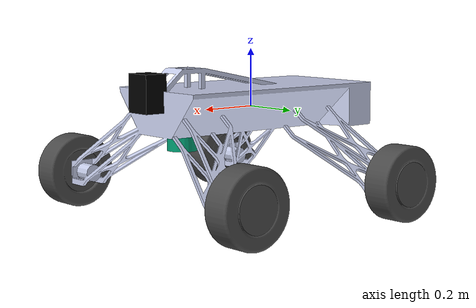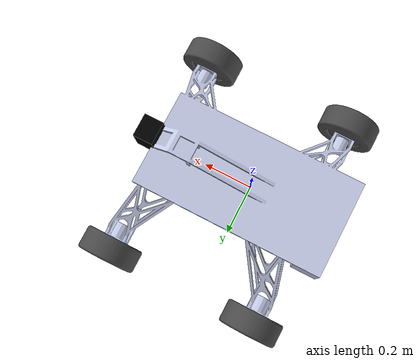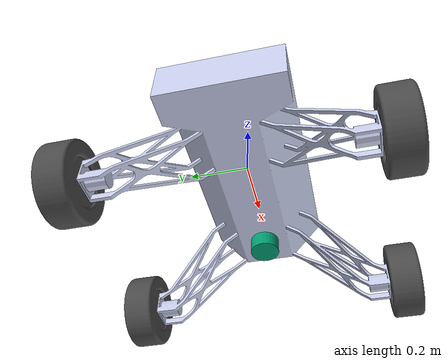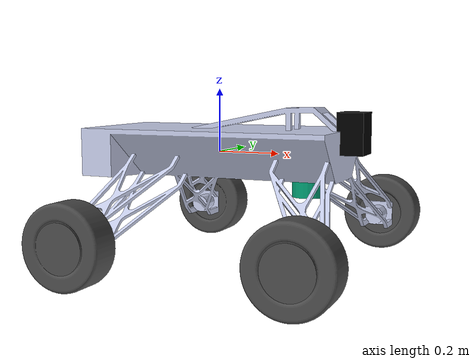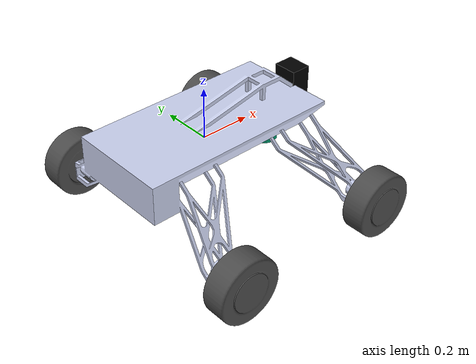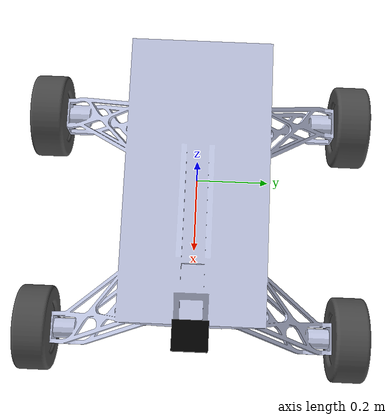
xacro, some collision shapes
<?xml version="1.0"?>
<robot xmlns:xacro="http://www.ros.org/wiki/xacro"  name="rover">

    <!-- Include macros -->
    <xacro:include filename="$(find rover_description)/urdf/materials.xacro"/>

    <xacro:include filename="$(find rover_description)/urdf/bases/rover_description.urdf.xacro" />
    <xacro:include filename="$(find rover_description)/urdf/sensors/camera.urdf.xacro" />
    <xacro:include filename="$(find rover_description)/urdf/sensors/odometry.urdf.xacro" />
    <xacro:include filename="$(find rover_description)/urdf/sensors/lidar.urdf.xacro" />

    <xacro:include filename="$(find rover_description)/urdf/bases/ros2_control.xacro" />
</robot>

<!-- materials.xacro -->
<robot name="materials" xmlns:xacro="http://www.ros.org/wiki/xacro">
   <material name="red">
        <color rgba="0.8 0 0 1"/>
    </material>

    <material name="green">
        <color rgba="0 0.8 0 1"/>
    </material>

    <material name="blue">
        <color rgba="0 0 0.8 1"/>
    </material>

    <material name="orange">
        <color rgba="0.8 0.25 0 1"/>
    </material>

    <material name="black">
        <color rgba="0 0 0 1"/>
    </material>

    <material name="dark_gray">
        <color rgba="0.5 0.5 0.5 1"/>
    </material>

    <material name="gray">
        <color rgba="0.753 0.753 0.753 1"/>
    </material>

    <material name="silver">
        <color rgba="0.88 0.88 0.88 1"/>
    </material>

    <material name="white">
        <color rgba="1 1 1 1"/>
    </material>
</robot>

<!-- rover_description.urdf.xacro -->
<robot xmlns:xacro="http://www.ros.org/wiki/xacro"  name="body">

  <link
    name="base_link">

  </link>

  <link name="chassis_link">
    <inertial>
      <origin
        xyz="0.014675 4.4183E-17 -0.040844"
        rpy="0 0 0" />
      <mass
        value="7" />
      <inertia
        ixx="0.44077"
        ixy="2.0222E-16"
        ixz="0.020835"
        iyy="0.57358"
        iyz="-7.1373E-17"
        izz="0.84637" />
    </inertial>
    <visual>
      <origin
        xyz="0 0 0"
        rpy="0 0 0" />
      <geometry>
        <mesh
          filename="file://$(find rover_description)/meshes/chassis_link.STL" />
      </geometry>
      <material
        name="">
        <color
          rgba="0.79216 0.81961 0.93333 1" />
      </material>
    </visual>
    <collision>
      <origin
        xyz="0 0 0"
        rpy="0 0 0" />
      <geometry>
        <mesh
          filename="file://$(find rover_description)/meshes/chassis_link.STL" />
      </geometry>
    </collision>
  </link>

  <gazebo reference="chassis_link">
        <material>Gazebo/White</material>
  </gazebo>

  <joint name="chassis_joint" type="fixed">
    <parent link="base_link" />
    <child link="chassis_link" />
    <origin xyz="0 0 0" />
  </joint>

  <link
    name="front_right_wheel_link">
    <inertial>
      <origin
        xyz="0.0146753114930385 4.4183075589603E-17 -0.0408444702966285"
        rpy="0 0 0" />
      <mass
        value="1" />
      <inertia
        ixx="0.440773403043026"
        ixy="2.0222253827549E-16"
        ixz="0.0208345815304579"
        iyy="0.57357932783604"
        iyz="-7.13726605678202E-17"
        izz="0.846373788852003" />
    </inertial>
    <visual>
      <origin
        xyz="0 0 0"
        rpy="0 0 0" />
      <geometry>
        <mesh
          filename="file://$(find rover_description)/meshes/front_right_wheel_link.STL" />
      </geometry>
      <material
        name="">
        <color
          rgba="0.298039215686275 0.298039215686275 0.298039215686275 1" />
      </material>
    </visual>
    <collision>
      <origin
        xyz="0 0 0"
        rpy="0 0 0" />
      <geometry>
        <mesh
          filename="file://$(find rover_description)/meshes/front_right_wheel_link.STL" />
      </geometry>
    </collision>
  </link>

  <gazebo reference="front_right_wheel_link">
        <material>Gazebo/Gray</material>
  </gazebo>

  <joint
    name="front_right_wheel_joint"
    type="continuous">
    <origin
      xyz="0.42117 -0.47112 -0.23635"
      rpy="0 0 0" />
    <parent
      link="base_link" />
    <child
      link="front_right_wheel_link" />
    <axis
      xyz="0 1 0" />
  </joint>

  <link
    name="rear_right_wheel_link">
    <inertial>
      <origin
        xyz="0.0146753114930385 4.4183075589603E-17 -0.0408444702966285"
        rpy="0 0 0" />
      <mass
        value="1" />
      <inertia
        ixx="0.440773403043026"
        ixy="2.0222253827549E-16"
        ixz="0.0208345815304579"
        iyy="0.57357932783604"
        iyz="-7.13726605678202E-17"
        izz="0.846373788852003" />
    </inertial>
    <visual>
      <origin
        xyz="0 0 0"
        rpy="0 0 0" />
      <geometry>
        <mesh
          filename="file://$(find rover_description)/meshes/rear_right_wheel_link.STL" />
      </geometry>
      <material
        name="">
        <color
          rgba="0.298039215686275 0.298039215686275 0.298039215686275 1" />
      </material>
    </visual>
    <collision>
      <origin
        xyz="0 0 0"
        rpy="0 0 0" />
      <geometry>
        <mesh
          filename="file://$(find rover_description)/meshes/rear_right_wheel_link.STL" />
      </geometry>
    </collision>
  </link>

  <gazebo reference="rear_right_wheel_link">
        <material>Gazebo/Gray</material>
  </gazebo>

  <joint
    name="rear_right_wheel_joint"
    type="continuous">
    <origin
      xyz="-0.25063 -0.47112 -0.23635"
      rpy="0 0 0" />
    <parent
      link="base_link" />
    <child
      link="rear_right_wheel_link" />
    <axis
      xyz="0 1 0" />
  </joint>
  <link
    name="front_left_wheel_link">
    <inertial>
      <origin
        xyz="0.0146753114930385 4.4183075589603E-17 -0.0408444702966285"
        rpy="0 0 0" />
      <mass
        value="1" />
      <inertia
        ixx="0.440773403043026"
        ixy="2.0222253827549E-16"
        ixz="0.0208345815304579"
        iyy="0.57357932783604"
        iyz="-7.13726605678202E-17"
        izz="0.846373788852003" />
    </inertial>
    <visual>
      <origin
        xyz="0 0 0"
        rpy="0 0 0" />
      <geometry>
        <mesh
          filename="file://$(find rover_description)/meshes/front_left_wheel_link.STL" />
      </geometry>
      <material
        name="">
        <color
          rgba="0.298039215686275 0.298039215686275 0.298039215686275 1" />
      </material>
    </visual>
    <collision>
      <origin
        xyz="0 0 0"
        rpy="0 0 0" />
      <geometry>
        <mesh
          filename="file://$(find rover_description)/meshes/front_left_wheel_link.STL" />
      </geometry>
    </collision>
  </link>

  <gazebo reference="front_left_wheel_link">
        <material>Gazebo/Gray</material>
  </gazebo>

  <joint
    name="front_left_wheel_joint"
    type="continuous">
    <origin
      xyz="0.42117 0.47112 -0.23635"
      rpy="0 0 0" />
    <parent
      link="base_link" />
    <child
      link="front_left_wheel_link" />
    <axis
      xyz="0 1 0" />
  </joint>
  <link
    name="rear_left_wheel_link">
    <inertial>
      <origin
        xyz="0.0146753114930385 4.4183075589603E-17 -0.0408444702966285"
        rpy="0 0 0" />
      <mass
        value="1" />
      <inertia
        ixx="0.440773403043026"
        ixy="2.0222253827549E-16"
        ixz="0.0208345815304579"
        iyy="0.57357932783604"
        iyz="-7.13726605678202E-17"
        izz="0.846373788852003" />
    </inertial>
    <visual>
      <origin
        xyz="0 0 0"
        rpy="0 0 0" />
      <geometry>
        <mesh
          filename="file://$(find rover_description)/meshes/rear_left_wheel_link.STL" />
      </geometry>
      <material
        name="">
        <color
          rgba="0.298039215686275 0.298039215686275 0.298039215686275 1" />
      </material>
    </visual>
    <collision>
      <origin
        xyz="0 0 0"
        rpy="0 0 0" />
      <geometry>
        <mesh
          filename="file://$(find rover_description)/meshes/rear_left_wheel_link.STL" />
      </geometry>
    </collision>
  </link>

  <gazebo reference="rear_left_wheel_link">
        <material>Gazebo/Gray</material>
  </gazebo>

  <joint
    name="rear_left_wheel_joint"
    type="continuous">
    <origin
      xyz="-0.25063 0.47112 -0.23635"
      rpy="0 0 0" />
    <parent
      link="base_link" />
    <child
      link="rear_left_wheel_link" />
    <axis
      xyz="0 1 0" />
  </joint>

</robot>

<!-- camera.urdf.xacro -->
<!--  xacro macros for oakd mount -->
<robot xmlns:xacro="http://ros.org/wiki/xacro" name="camera">

    <xacro:include filename="$(find rover_description)/urdf/inertials.xacro"/>
    <xacro:include filename="$(find rover_description)/urdf/sensors/oak_d.xacro"/>

    <joint name="oakd_joint" type="fixed">
      <parent link="chassis_link" />
      <child link="oakd_front" />
      <origin xyz="0.44 0 0.07" rpy="0 0 0"/>
    </joint>

    <xacro:oakd_link mount_point="front"/>
</robot>

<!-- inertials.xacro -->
<robot name="inertials" xmlns:xacro="http://www.ros.org/wiki/xacro">

    <!-- Math constants -->
    <xacro:property name="math_pi"        value="3.141592653589793" />
    <xacro:property name="math_pi_over_2" value="1.5707963267948966" />
    <xacro:property name="math_pi_over_4" value="0.785398163397448" />

    <!-- Inertial for solid cuboid with dimensions x y z  -->
    <xacro:macro name="solid_cuboid_inertial" params="rpy xyz mass x y z">
        <inertial>
            <origin rpy="${rpy}" xyz="${xyz}"/>
            <mass value="${mass}" />
            <inertia
                ixx="${mass * (y * y + z * z) / 12.0}" ixy="0.0" ixz="0.0"
                iyy="${mass * (x * x + z * z) / 12.0}" iyz="0.0"
                izz="${mass * (x * x + y * y) / 12.0}" />
        </inertial>
    </xacro:macro>

    <!-- Inertial for solid cylinder with radius and length aligned to z-axis  -->
    <xacro:macro name="solid_cylinder_inertial" params="rpy xyz mass radius length">
        <inertial>
            <origin rpy="${rpy}" xyz="${xyz}"/>
            <mass value="${mass}" />
            <inertia
                ixx="${mass * (3.0 * radius * radius + length * length) / 12.0}" ixy="0.0" ixz="0.0"
                iyy="${mass * (3.0 * radius * radius + length * length) / 12.0}" iyz="0.0"
                izz="${mass * (radius * radius) / 2.0}" />
        </inertial>
    </xacro:macro>

</robot>

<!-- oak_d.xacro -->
<!--  xacro macros for oakd mount -->
<robot name="oakd" xmlns:xacro="http://ros.org/wiki/xacro">
      <xacro:macro name="oakd_link" params="mount_point">
        <xacro:property name="oakd_length" value="0.0803" />
        <xacro:property name="oakd_width" value="0.0957" />
        <xacro:property name="oakd_depth" value="0.1267" />
        <xacro:property name="oakd_mass" value="0.15" />

        <link name="oakd_${mount_point}">
              <pose>0.0 0.0 0.0 0.0 0.0 0.0</pose>
            <visual>
                <origin rpy="0 0 0" xyz="0 0 0" />
                <geometry>
                        <mesh filename="file://$(find rover_description)/meshes/sensors/OAK-D.dae" />
                </geometry>
                <material name="black" />
            </visual>
            <collision>
                <origin rpy="0 0 0" xyz="0 0 0" />
                <geometry>
                    <box size="${oakd_length} ${oakd_width} ${oakd_depth}"/>
                </geometry>
            </collision>
            <xacro:solid_cuboid_inertial
                rpy="0 0 0" xyz="0 0 0"
                mass="${oakd_mass}"
                x="${oakd_length}" y="${oakd_width}" z="${oakd_depth}" />
        </link>

        <!-- Add dummy joint for camera_optical_frame to link back to base_link -->

        <joint name="camera_optical_joint" type="fixed">
        <!-- Point cloud frustrum is 90 degrees off from visual frame -->
            <origin rpy="-1.57079632769 0 -1.570796332769" xyz="0 0 0" />
      <parent link="oakd_${mount_point}" />
      <child link="camera_optical_frame" />
    </joint>

    <!-- Add dummy link for camera_optical_frame to link back to base_link -->
          <link name="camera_optical_frame">
          <inertial>
      <mass value="0.001" />
      <origin xyz="0 0 0" />
      <inertia ixx="0.0001" ixy="0.0" ixz="0.0" iyy="0.0001" iyz="0.0" izz="0.0001" />
            </inertial>
    </link>

    <!-- Dummy joints for rgb camera to link back to base_link -->
          <joint name="camera_rgb_optical_joint" type="fixed">
            <origin rpy="0 0 0" xyz="0 0 0" />
      <parent link="oakd_${mount_point}" />
      <child link="camera_rgb_optical_frame" />
    </joint>

    <!-- Add dummy link for camera_optical_frame to link back to base_link -->
          <link name="camera_rgb_optical_frame">
          <inertial>
      <mass value="0.001" />
      <origin xyz="0 0 0" />
      <inertia ixx="0.0001" ixy="0.0" ixz="0.0" iyy="0.0001" iyz="0.0" izz="0.0001" />
            </inertial>
    </link>

    <!-- Gazebo plugin for greyscale left/right stereo pairs -->

    <gazebo reference="oakd_${mount_point}">
      <material>Gazebo/DarkGrey</material>
      <sensor type="multicamera" name="oakd_stereo_${mount_point}">

        <update_rate>30.0</update_rate>
        <camera name="left">
          <horizontal_fov>1.2566</horizontal_fov>
          <image>
            <width>1200</width>
            <height>800</height>
      <format>L8</format>
          </image>
          <clip>
            <near>0.3</near>
            <far>35</far>
          </clip>
          <noise>
            <type>gaussian</type>
            <mean>0.0</mean>
            <stddev>0.007</stddev>
          </noise>
        </camera>
        <camera name="right">
          <pose>0 -0.07 0 0 0 0</pose>
          <horizontal_fov>1.1.2566</horizontal_fov>
          <image>
            <width>1200</width>
            <height>800</height>
      <format>L8</format>
          </image>
          <clip>
            <near>0.3</near>
            <far>35</far>
          </clip>
          <noise>
            <type>gaussian</type>
            <mean>0.0</mean>
            <stddev>0.007</stddev>
          </noise>
        </camera>
        <plugin name="stereo_camera_controller" filename="libgazebo_ros_camera.so">
        <!-- libgazebo_ros_multicamera.so -->
          <alwaysOn>true</alwaysOn>
          <updateRate>0.0</updateRate>
    <cameraName>oakd_${mount_point}/camera</cameraName>
          <imageTopicName>image_raw</imageTopicName>
          <cameraInfoTopicName>camera_info</cameraInfoTopicName>
    <frameName>camera_optical_frame</frameName>
          <hackBaseline>0.075</hackBaseline>
          <distortionK1>0.0</distortionK1>
          <distortionK2>0.0</distortionK2>
          <distortionK3>0.0</distortionK3>
          <distortionT1>0.0</distortionT1>
          <distortionT2>0.0</distortionT2>
        </plugin>
      </sensor>
    </gazebo>

  <gazebo reference="oakd_${mount_point}">

    <sensor name="oakd_depth_${mount_point}" type="depth">
      <visualize>true</visualize>
      <update_rate>10</update_rate>
      <camera>
          <horizontal_fov>1.2566</horizontal_fov>
          <image>
            <width>1200</width>
            <height>800</height>
            <format>B8G8R8</format>
          </image>
          <clip>
            <near>0.05</near>
            <far>8.0</far>
          </clip>
      </camera>
      <plugin name="depth_camera_controller" filename="libgazebo_ros_camera.so">
        <frame_name>camera_optical_frame</frame_name>
        <min_depth>0.1</min_depth>
        <max_depth>100.0</max_depth>
      </plugin>
    </sensor>
  </gazebo>

  <!-- Gazebo plugin for center RGB camera -->

    <gazebo reference="oakd_${mount_point}">
        <sensor type="camera" name="oakd_rgb_${mount_point}">
        <visualize>true</visualize>
        <update_rate>30.0</update_rate>
        <camera name="head">
          <horizontal_fov>1.3962634</horizontal_fov>
          <image>
            <width>800</width>
            <height>800</height>
            <format>R8G8B8</format>
          </image>
          <clip>
            <near>0.02</near>
            <far>300</far>
          </clip>
          <noise>
            <type>gaussian</type>
            <!-- Noise is sampled independently per pixel on each frame.
                That pixel's noise value is added to each of its color
                channels, which at that point lie in the range [0,1]. -->
            <mean>0.0</mean>
            <stddev>0.007</stddev>
          </noise>
        </camera>
        <plugin name="camera_controller" filename="libgazebo_ros_camera.so">
          <alwaysOn>true</alwaysOn>
          <updateRate>0.0</updateRate>
          <cameraName>oakd_rgb_${mount_point}</cameraName>
          <imageTopicName>image_raw</imageTopicName>
          <cameraInfoTopicName>camera_info</cameraInfoTopicName>
          <frameName>camera_rgb_link_optical</frameName>
          <!-- setting hackBaseline to anything but 0.0 will cause a misalignment
              between the gazebo sensor image and the frame it is supposed to
              be attached to -->
          <hackBaseline>0.0</hackBaseline>
          <distortionK1>0.0</distortionK1>
          <distortionK2>0.0</distortionK2>
          <distortionK3>0.0</distortionK3>
          <distortionT1>0.0</distortionT1>
          <distortionT2>0.0</distortionT2>
          <CxPrime>0</CxPrime>
          <Cx>0.0</Cx>
          <Cy>0.0</Cy>
          <focalLength>0.0</focalLength>
        </plugin>
      </sensor>
    </gazebo>

        <gazebo reference="oakd_joint_${mount_point}">
        </gazebo>
      </xacro:macro>

      <xacro:macro name="oakd_joint" params="x y z roll pitch yaw mount_point" >
          <joint name="oakd_joint_${mount_point}" type="fixed">
                  <origin rpy="${roll} ${pitch} ${yaw}" xyz="${x}+0.1 ${y}-0.01 ${z}"/>
              <parent link="base_link" />
              <child link="oakd_${mount_point}" />
          </joint>

          <gazebo reference="oakd_joint_${mount_point}">
              <preserveFixedJoint>true</preserveFixedJoint>
          </gazebo>
    </xacro:macro>
</robot>

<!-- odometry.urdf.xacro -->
<!--  xacro macros for odometry-->
<robot xmlns:xacro="http://ros.org/wiki/xacro" name="odometry">

    <xacro:include filename="$(find rover_description)/urdf/inertials.xacro"/>
    <xacro:include filename="$(find rover_description)/urdf/sensors/imu.xacro"/>

    <joint name="imu_joint" type="fixed">
      <parent link="chassis_link" />
      <child link="base_imu_link" />
      <origin xyz="0 0 0.01" rpy="0 0 0"/>
    </joint>

    <xacro:imu_link prefix="base"/>
</robot>

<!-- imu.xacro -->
<robot name="imu" xmlns:xacro="http://www.ros.org/wiki/xacro">

  <xacro:macro name="imu_link" params="prefix">
    <xacro:property name="imu_length" value="0.1" />
    <xacro:property name="imu_width" value="0.1" />
    <xacro:property name="imu_depth" value="0.1" />
    <xacro:property name="imu_mass" value="0.1" />

    <link name="${prefix}_imu_link">
      <visual>
        <geometry>
          <box size="${imu_length} ${imu_width} ${imu_depth}"/>
        </geometry>
      </visual>

      <collision>
        <geometry>
          <box size="${imu_length} ${imu_width} ${imu_depth}"/>
        </geometry>
      </collision>
      <xacro:solid_cuboid_inertial
                rpy="0 0 0" xyz="0 0 0"
                mass="${imu_mass}"
                x="${imu_length}" y="${imu_width}" z="${imu_depth}" />

    </link>

    <gazebo reference="${prefix}_imu_link">
      <sensor name="imu_sensor" type="imu">
      <plugin filename="libgazebo_ros_imu_sensor.so" name="imu_plugin">
          <ros>
            <remapping>~/out:=imu</remapping>
          </ros>
          <initial_orientation_as_reference>false</initial_orientation_as_reference>
        </plugin>
        <always_on>true</always_on>
        <update_rate>100</update_rate>
        <visualize>true</visualize>
        <imu>
          <angular_velocity>
            <x>
              <noise type="gaussian">
                <mean>0.0</mean>
                <stddev>2e-4</stddev>
                <bias_mean>0.0000075</bias_mean>
                <bias_stddev>0.0000008</bias_stddev>
              </noise>
            </x>
            <y>
              <noise type="gaussian">
                <mean>0.0</mean>
                <stddev>2e-4</stddev>
                <bias_mean>0.0000075</bias_mean>
                <bias_stddev>0.0000008</bias_stddev>
              </noise>
            </y>
            <z>
              <noise type="gaussian">
                <mean>0.0</mean>
                <stddev>2e-4</stddev>
                <bias_mean>0.0000075</bias_mean>
                <bias_stddev>0.0000008</bias_stddev>
              </noise>
            </z>
          </angular_velocity>
          <linear_acceleration>
            <x>
              <noise type="gaussian">
                <mean>0.0</mean>
                <stddev>1.7e-2</stddev>
                <bias_mean>0.1</bias_mean>
                <bias_stddev>0.001</bias_stddev>
              </noise>
            </x>
            <y>
              <noise type="gaussian">
                <mean>0.0</mean>
                <stddev>1.7e-2</stddev>
                <bias_mean>0.1</bias_mean>
                <bias_stddev>0.001</bias_stddev>
              </noise>
            </y>
            <z>
              <noise type="gaussian">
                <mean>0.0</mean>
                <stddev>1.7e-2</stddev>
                <bias_mean>0.1</bias_mean>
                <bias_stddev>0.001</bias_stddev>
              </noise>
            </z>
          </linear_acceleration>
        </imu>
      </sensor>
    </gazebo>

  </xacro:macro>

</robot>

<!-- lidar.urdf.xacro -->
<robot name="lidar" xmlns:xacro="http://www.ros.org/wiki/xacro">

    <link name="lidar_link">
    <inertial>
        <origin xyz="0 0 0" rpy="0 0 0"/>
        <mass value="0.125"/>
        <inertia ixx="0.001"  ixy="0"  ixz="0" iyy="0.001" iyz="0" izz="0.001" />
    </inertial>

    <collision>
        <origin xyz="0 0 0" rpy="0 0 0"/>
        <geometry>
        <cylinder radius="0.0508" length="0.055"/>
        </geometry>
    </collision>

    <visual>
        <origin xyz="0 0 0" rpy="0 0 0"/>
        <geometry>
        <cylinder radius="0.0508" length="0.055"/>
        </geometry>
    </visual>
    </link>

    <joint name="lidar_joint" type="fixed">
    <parent link="chassis_link"/>
    <child link="lidar_link"/>
    <origin xyz="0.3 0 -0.1" rpy="0 0 0"/>
    </joint>

    <gazebo reference="lidar_link">
    <sensor name="lidar" type="ray">
        <always_on>true</always_on>
        <visualize>true</visualize>
        <update_rate>5</update_rate>
        <ray>
        <scan>
            <horizontal>
            <samples>360</samples>
            <resolution>1.000000</resolution>
            <min_angle>0.000000</min_angle>
            <max_angle>6.280000</max_angle>
            </horizontal>
        </scan>
        <range>
            <min>0.120000</min>
            <max>3.5</max>
            <resolution>0.015000</resolution>
        </range>
        <noise>
            <type>gaussian</type>
            <mean>0.0</mean>
            <stddev>0.01</stddev>
        </noise>
        </ray>
        <plugin name="scan" filename="libgazebo_ros_ray_sensor.so">
        <ros>
            <remapping>~/out:=scan</remapping>
        </ros>
        <output_type>sensor_msgs/LaserScan</output_type>
        <frame_name>lidar_link</frame_name>
        </plugin>
    </sensor>
    </gazebo>

</robot>
